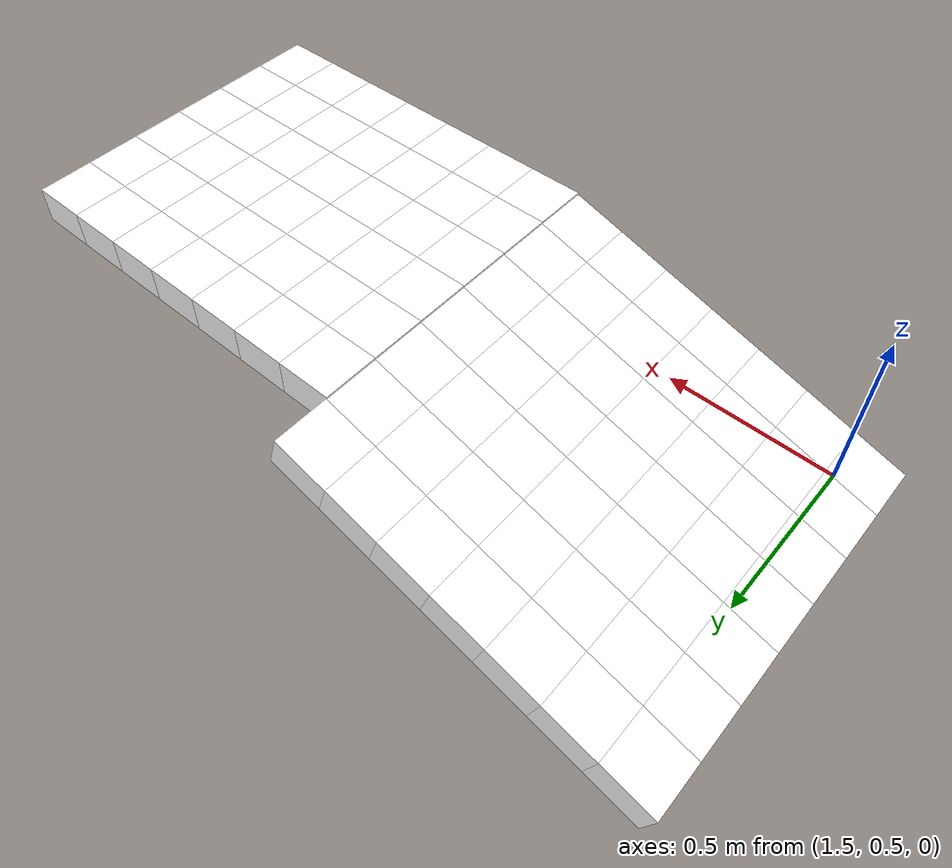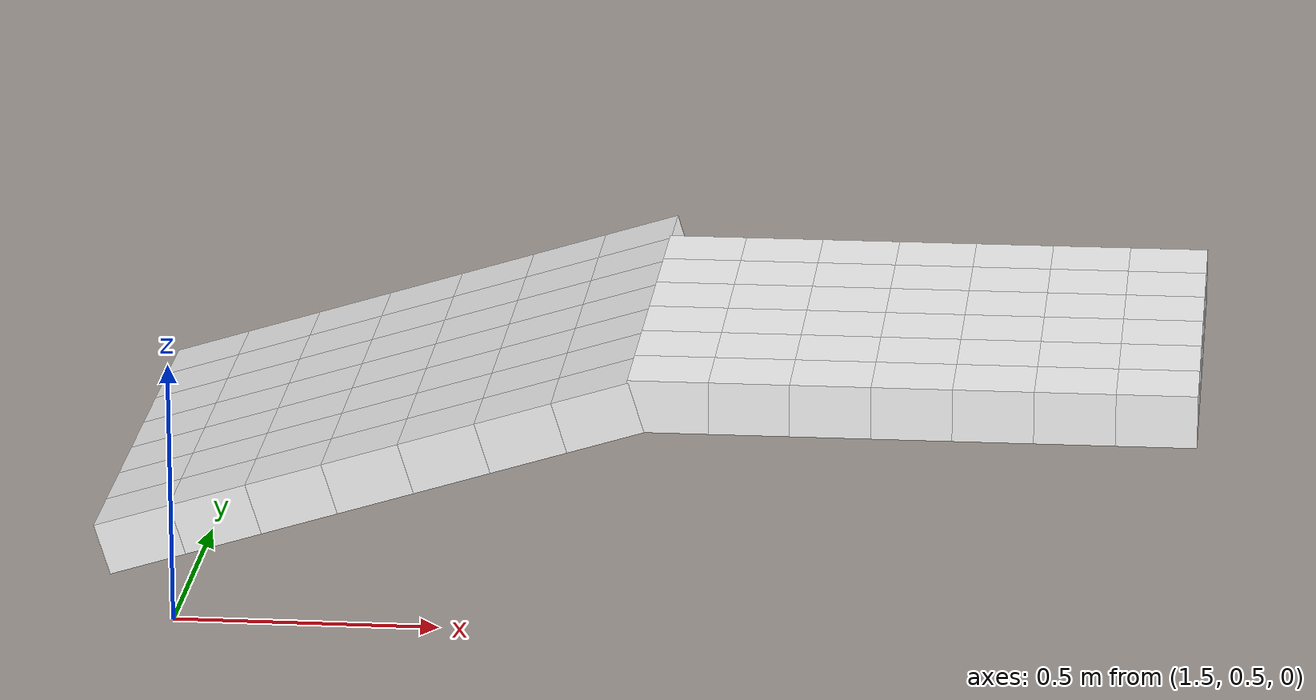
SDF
<sdf version="1.7">
 <world name="default">
  <include><uri>model://sun</uri></include>
  <model name="static_environment">
   <static>true</static>
   <link name="region_403">
    <pose>1.4350740071713122 0.6 0.1466852591640488 0.0 -0.3 0.0</pose>
    <collision name="region_403_collision">
     <geometry><box><size>0.15 0.15 0.1</size></box></geometry>
     <surface><friction><ode><mu>1.0</mu><mu2>1.0</mu2></ode></friction></surface>
    </collision>
    <visual name="region_403_visual">
     <geometry><box><size>0.15 0.15 0.1</size></box></geometry>
     <material><ambient>1.0 1.0 1.0 1.0</ambient><diffuse>1.0 1.0 1.0 1.0</diffuse></material>
    </visual>
   </link>
   <link name="region_404">
    <pose>1.5783744805401532 0.6 0.1910132901632498 0.0 -0.3 0.0</pose>
    <collision name="region_404_collision">
     <geometry><box><size>0.15 0.15 0.1</size></box></geometry>
     <surface><friction><ode><mu>1.0</mu><mu2>1.0</mu2></ode></friction></surface>
    </collision>
    <visual name="region_404_visual">
     <geometry><box><size>0.15 0.15 0.1</size></box></geometry>
     <material><ambient>1.0 1.0 1.0 1.0</ambient><diffuse>1.0 1.0 1.0 1.0</diffuse></material>
    </visual>
   </link>
   <link name="region_405">
    <pose>1.7216749539089942 0.6 0.2353413211624507 0.0 -0.3 0.0</pose>
    <collision name="region_405_collision">
     <geometry><box><size>0.15 0.15 0.1</size></box></geometry>
     <surface><friction><ode><mu>1.0</mu><mu2>1.0</mu2></ode></friction></surface>
    </collision>
    <visual name="region_405_visual">
     <geometry><box><size>0.15 0.15 0.1</size></box></geometry>
     <material><ambient>1.0 1.0 1.0 1.0</ambient><diffuse>1.0 1.0 1.0 1.0</diffuse></material>
    </visual>
   </link>
   <link name="region_406">
    <pose>1.8649754272778347 0.6 0.2796693521616516 0.0 -0.3 0.0</pose>
    <collision name="region_406_collision">
     <geometry><box><size>0.15 0.15 0.1</size></box></geometry>
     <surface><friction><ode><mu>1.0</mu><mu2>1.0</mu2></ode></friction></surface>
    </collision>
    <visual name="region_406_visual">
     <geometry><box><size>0.15 0.15 0.1</size></box></geometry>
     <material><ambient>1.0 1.0 1.0 1.0</ambient><diffuse>1.0 1.0 1.0 1.0</diffuse></material>
    </visual>
   </link>
   <link name="region_407">
    <pose>2.0082759006466757 0.6 0.3239973831608525 0.0 -0.3 0.0</pose>
    <collision name="region_407_collision">
     <geometry><box><size>0.15 0.15 0.1</size></box></geometry>
     <surface><friction><ode><mu>1.0</mu><mu2>1.0</mu2></ode></friction></surface>
    </collision>
    <visual name="region_407_visual">
     <geometry><box><size>0.15 0.15 0.1</size></box></geometry>
     <material><ambient>1.0 1.0 1.0 1.0</ambient><diffuse>1.0 1.0 1.0 1.0</diffuse></material>
    </visual>
   </link>
   <link name="region_408">
    <pose>2.151576374015516 0.6 0.36832541416005343 0.0 -0.3 0.0</pose>
    <collision name="region_408_collision">
     <geometry><box><size>0.15 0.15 0.1</size></box></geometry>
     <surface><friction><ode><mu>1.0</mu><mu2>1.0</mu2></ode></friction></surface>
    </collision>
    <visual name="region_408_visual">
     <geometry><box><size>0.15 0.15 0.1</size></box></geometry>
     <material><ambient>1.0 1.0 1.0 1.0</ambient><diffuse>1.0 1.0 1.0 1.0</diffuse></material>
    </visual>
   </link>
   <link name="region_409">
    <pose>2.2948768473843577 0.6 0.41265344515925434 0.0 -0.3 0.0</pose>
    <collision name="region_409_collision">
     <geometry><box><size>0.15 0.15 0.1</size></box></geometry>
     <surface><friction><ode><mu>1.0</mu><mu2>1.0</mu2></ode></friction></surface>
    </collision>
    <visual name="region_409_visual">
     <geometry><box><size>0.15 0.15 0.1</size></box></geometry>
     <material><ambient>1.0 1.0 1.0 1.0</ambient><diffuse>1.0 1.0 1.0 1.0</diffuse></material>
    </visual>
   </link>
   <link name="region_413">
    <pose>1.4350740071713122 0.75 0.1466852591640488 0.0 -0.3 0.0</pose>
    <collision name="region_413_collision">
     <geometry><box><size>0.15 0.15 0.1</size></box></geometry>
     <surface><friction><ode><mu>1.0</mu><mu2>1.0</mu2></ode></friction></surface>
    </collision>
    <visual name="region_413_visual">
     <geometry><box><size>0.15 0.15 0.1</size></box></geometry>
     <material><ambient>1.0 1.0 1.0 1.0</ambient><diffuse>1.0 1.0 1.0 1.0</diffuse></material>
    </visual>
   </link>
   <link name="region_414">
    <pose>1.5783744805401532 0.75 0.1910132901632498 0.0 -0.3 0.0</pose>
    <collision name="region_414_collision">
     <geometry><box><size>0.15 0.15 0.1</size></box></geometry>
     <surface><friction><ode><mu>1.0</mu><mu2>1.0</mu2></ode></friction></surface>
    </collision>
    <visual name="region_414_visual">
     <geometry><box><size>0.15 0.15 0.1</size></box></geometry>
     <material><ambient>1.0 1.0 1.0 1.0</ambient><diffuse>1.0 1.0 1.0 1.0</diffuse></material>
    </visual>
   </link>
   <link name="region_415">
    <pose>1.7216749539089942 0.75 0.2353413211624507 0.0 -0.3 0.0</pose>
    <collision name="region_415_collision">
     <geometry><box><size>0.15 0.15 0.1</size></box></geometry>
     <surface><friction><ode><mu>1.0</mu><mu2>1.0</mu2></ode></friction></surface>
    </collision>
    <visual name="region_415_visual">
     <geometry><box><size>0.15 0.15 0.1</size></box></geometry>
     <material><ambient>1.0 1.0 1.0 1.0</ambient><diffuse>1.0 1.0 1.0 1.0</diffuse></material>
    </visual>
   </link>
   <link name="region_416">
    <pose>1.8649754272778347 0.75 0.2796693521616516 0.0 -0.3 0.0</pose>
    <collision name="region_416_collision">
     <geometry><box><size>0.15 0.15 0.1</size></box></geometry>
     <surface><friction><ode><mu>1.0</mu><mu2>1.0</mu2></ode></friction></surface>
    </collision>
    <visual name="region_416_visual">
     <geometry><box><size>0.15 0.15 0.1</size></box></geometry>
     <material><ambient>1.0 1.0 1.0 1.0</ambient><diffuse>1.0 1.0 1.0 1.0</diffuse></material>
    </visual>
   </link>
   <link name="region_417">
    <pose>2.0082759006466757 0.75 0.3239973831608525 0.0 -0.3 0.0</pose>
    <collision name="region_417_collision">
     <geometry><box><size>0.15 0.15 0.1</size></box></geometry>
     <surface><friction><ode><mu>1.0</mu><mu2>1.0</mu2></ode></friction></surface>
    </collision>
    <visual name="region_417_visual">
     <geometry><box><size>0.15 0.15 0.1</size></box></geometry>
     <material><ambient>1.0 1.0 1.0 1.0</ambient><diffuse>1.0 1.0 1.0 1.0</diffuse></material>
    </visual>
   </link>
   <link name="region_418">
    <pose>2.151576374015516 0.75 0.36832541416005343 0.0 -0.3 0.0</pose>
    <collision name="region_418_collision">
     <geometry><box><size>0.15 0.15 0.1</size></box></geometry>
     <surface><friction><ode><mu>1.0</mu><mu2>1.0</mu2></ode></friction></surface>
    </collision>
    <visual name="region_418_visual">
     <geometry><box><size>0.15 0.15 0.1</size></box></geometry>
     <material><ambient>1.0 1.0 1.0 1.0</ambient><diffuse>1.0 1.0 1.0 1.0</diffuse></material>
    </visual>
   </link>
   <link name="region_419">
    <pose>2.2948768473843577 0.75 0.41265344515925434 0.0 -0.3 0.0</pose>
    <collision name="region_419_collision">
     <geometry><box><size>0.15 0.15 0.1</size></box></geometry>
     <surface><friction><ode><mu>1.0</mu><mu2>1.0</mu2></ode></friction></surface>
    </collision>
    <visual name="region_419_visual">
     <geometry><box><size>0.15 0.15 0.1</size></box></geometry>
     <material><ambient>1.0 1.0 1.0 1.0</ambient><diffuse>1.0 1.0 1.0 1.0</diffuse></material>
    </visual>
   </link>
   <link name="region_423">
    <pose>1.4350740071713122 0.8999999999999999 0.1466852591640488 0.0 -0.3 0.0</pose>
    <collision name="region_423_collision">
     <geometry><box><size>0.15 0.15 0.1</size></box></geometry>
     <surface><friction><ode><mu>1.0</mu><mu2>1.0</mu2></ode></friction></surface>
    </collision>
    <visual name="region_423_visual">
     <geometry><box><size>0.15 0.15 0.1</size></box></geometry>
     <material><ambient>1.0 1.0 1.0 1.0</ambient><diffuse>1.0 1.0 1.0 1.0</diffuse></material>
    </visual>
   </link>
   <link name="region_424">
    <pose>1.5783744805401532 0.8999999999999999 0.1910132901632498 0.0 -0.3 0.0</pose>
    <collision name="region_424_collision">
     <geometry><box><size>0.15 0.15 0.1</size></box></geometry>
     <surface><friction><ode><mu>1.0</mu><mu2>1.0</mu2></ode></friction></surface>
    </collision>
    <visual name="region_424_visual">
     <geometry><box><size>0.15 0.15 0.1</size></box></geometry>
     <material><ambient>1.0 1.0 1.0 1.0</ambient><diffuse>1.0 1.0 1.0 1.0</diffuse></material>
    </visual>
   </link>
   <link name="region_425">
    <pose>1.7216749539089942 0.8999999999999999 0.2353413211624507 0.0 -0.3 0.0</pose>
    <collision name="region_425_collision">
     <geometry><box><size>0.15 0.15 0.1</size></box></geometry>
     <surface><friction><ode><mu>1.0</mu><mu2>1.0</mu2></ode></friction></surface>
    </collision>
    <visual name="region_425_visual">
     <geometry><box><size>0.15 0.15 0.1</size></box></geometry>
     <material><ambient>1.0 1.0 1.0 1.0</ambient><diffuse>1.0 1.0 1.0 1.0</diffuse></material>
    </visual>
   </link>
   <link name="region_426">
    <pose>1.8649754272778347 0.8999999999999999 0.2796693521616516 0.0 -0.3 0.0</pose>
    <collision name="region_426_collision">
     <geometry><box><size>0.15 0.15 0.1</size></box></geometry>
     <surface><friction><ode><mu>1.0</mu><mu2>1.0</mu2></ode></friction></surface>
    </collision>
    <visual name="region_426_visual">
     <geometry><box><size>0.15 0.15 0.1</size></box></geometry>
     <material><ambient>1.0 1.0 1.0 1.0</ambient><diffuse>1.0 1.0 1.0 1.0</diffuse></material>
    </visual>
   </link>
   <link name="region_427">
    <pose>2.0082759006466757 0.8999999999999999 0.3239973831608525 0.0 -0.3 0.0</pose>
    <collision name="region_427_collision">
     <geometry><box><size>0.15 0.15 0.1</size></box></geometry>
     <surface><friction><ode><mu>1.0</mu><mu2>1.0</mu2></ode></friction></surface>
    </collision>
    <visual name="region_427_visual">
     <geometry><box><size>0.15 0.15 0.1</size></box></geometry>
     <material><ambient>1.0 1.0 1.0 1.0</ambient><diffuse>1.0 1.0 1.0 1.0</diffuse></material>
    </visual>
   </link>
   <link name="region_428">
    <pose>2.151576374015516 0.8999999999999999 0.36832541416005343 0.0 -0.3 0.0</pose>
    <collision name="region_428_collision">
     <geometry><box><size>0.15 0.15 0.1</size></box></geometry>
     <surface><friction><ode><mu>1.0</mu><mu2>1.0</mu2></ode></friction></surface>
    </collision>
    <visual name="region_428_visual">
     <geometry><box><size>0.15 0.15 0.1</size></box></geometry>
     <material><ambient>1.0 1.0 1.0 1.0</ambient><diffuse>1.0 1.0 1.0 1.0</diffuse></material>
    </visual>
   </link>
   <link name="region_429">
    <pose>2.2948768473843577 0.8999999999999999 0.41265344515925434 0.0 -0.3 0.0</pose>
    <collision name="region_429_collision">
     <geometry><box><size>0.15 0.15 0.1</size></box></geometry>
     <surface><friction><ode><mu>1.0</mu><mu2>1.0</mu2></ode></friction></surface>
    </collision>
    <visual name="region_429_visual">
     <geometry><box><size>0.15 0.15 0.1</size></box></geometry>
     <material><ambient>1.0 1.0 1.0 1.0</ambient><diffuse>1.0 1.0 1.0 1.0</diffuse></material>
    </visual>
   </link>
   <link name="region_433">
    <pose>1.4350740071713122 1.0499999999999998 0.1466852591640488 0.0 -0.3 0.0</pose>
    <collision name="region_433_collision">
     <geometry><box><size>0.15 0.15 0.1</size></box></geometry>
     <surface><friction><ode><mu>1.0</mu><mu2>1.0</mu2></ode></friction></surface>
    </collision>
    <visual name="region_433_visual">
     <geometry><box><size>0.15 0.15 0.1</size></box></geometry>
     <material><ambient>1.0 1.0 1.0 1.0</ambient><diffuse>1.0 1.0 1.0 1.0</diffuse></material>
    </visual>
   </link>
   <link name="region_434">
    <pose>1.5783744805401532 1.0499999999999998 0.1910132901632498 0.0 -0.3 0.0</pose>
    <collision name="region_434_collision">
     <geometry><box><size>0.15 0.15 0.1</size></box></geometry>
     <surface><friction><ode><mu>1.0</mu><mu2>1.0</mu2></ode></friction></surface>
    </collision>
    <visual name="region_434_visual">
     <geometry><box><size>0.15 0.15 0.1</size></box></geometry>
     <material><ambient>1.0 1.0 1.0 1.0</ambient><diffuse>1.0 1.0 1.0 1.0</diffuse></material>
    </visual>
   </link>
   <link name="region_435">
    <pose>1.7216749539089942 1.0499999999999998 0.2353413211624507 0.0 -0.3 0.0</pose>
    <collision name="region_435_collision">
     <geometry><box><size>0.15 0.15 0.1</size></box></geometry>
     <surface><friction><ode><mu>1.0</mu><mu2>1.0</mu2></ode></friction></surface>
    </collision>
    <visual name="region_435_visual">
     <geometry><box><size>0.15 0.15 0.1</size></box></geometry>
     <material><ambient>1.0 1.0 1.0 1.0</ambient><diffuse>1.0 1.0 1.0 1.0</diffuse></material>
    </visual>
   </link>
   <link name="region_436">
    <pose>1.8649754272778347 1.0499999999999998 0.2796693521616516 0.0 -0.3 0.0</pose>
    <collision name="region_436_collision">
     <geometry><box><size>0.15 0.15 0.1</size></box></geometry>
     <surface><friction><ode><mu>1.0</mu><mu2>1.0</mu2></ode></friction></surface>
    </collision>
    <visual name="region_436_visual">
     <geometry><box><size>0.15 0.15 0.1</size></box></geometry>
     <material><ambient>1.0 1.0 1.0 1.0</ambient><diffuse>1.0 1.0 1.0 1.0</diffuse></material>
    </visual>
   </link>
   <link name="region_437">
    <pose>2.0082759006466757 1.0499999999999998 0.3239973831608525 0.0 -0.3 0.0</pose>
    <collision name="region_437_collision">
     <geometry><box><size>0.15 0.15 0.1</size></box></geometry>
     <surface><friction><ode><mu>1.0</mu><mu2>1.0</mu2></ode></friction></surface>
    </collision>
    <visual name="region_437_visual">
     <geometry><box><size>0.15 0.15 0.1</size></box></geometry>
     <material><ambient>1.0 1.0 1.0 1.0</ambient><diffuse>1.0 1.0 1.0 1.0</diffuse></material>
    </visual>
   </link>
   <link name="region_438">
    <pose>2.151576374015516 1.0499999999999998 0.36832541416005343 0.0 -0.3 0.0</pose>
    <collision name="region_438_collision">
     <geometry><box><size>0.15 0.15 0.1</size></box></geometry>
     <surface><friction><ode><mu>1.0</mu><mu2>1.0</mu2></ode></friction></surface>
    </collision>
    <visual name="region_438_visual">
     <geometry><box><size>0.15 0.15 0.1</size></box></geometry>
     <material><ambient>1.0 1.0 1.0 1.0</ambient><diffuse>1.0 1.0 1.0 1.0</diffuse></material>
    </visual>
   </link>
   <link name="region_439">
    <pose>2.2948768473843577 1.0499999999999998 0.41265344515925434 0.0 -0.3 0.0</pose>
    <collision name="region_439_collision">
     <geometry><box><size>0.15 0.15 0.1</size></box></geometry>
     <surface><friction><ode><mu>1.0</mu><mu2>1.0</mu2></ode></friction></surface>
    </collision>
    <visual name="region_439_visual">
     <geometry><box><size>0.15 0.15 0.1</size></box></geometry>
     <material><ambient>1.0 1.0 1.0 1.0</ambient><diffuse>1.0 1.0 1.0 1.0</diffuse></material>
    </visual>
   </link>
   <link name="region_443">
    <pose>1.4350740071713122 1.2 0.1466852591640488 0.0 -0.3 0.0</pose>
    <collision name="region_443_collision">
     <geometry><box><size>0.15 0.15 0.1</size></box></geometry>
     <surface><friction><ode><mu>1.0</mu><mu2>1.0</mu2></ode></friction></surface>
    </collision>
    <visual name="region_443_visual">
     <geometry><box><size>0.15 0.15 0.1</size></box></geometry>
     <material><ambient>1.0 1.0 1.0 1.0</ambient><diffuse>1.0 1.0 1.0 1.0</diffuse></material>
    </visual>
   </link>
   <link name="region_444">
    <pose>1.5783744805401532 1.2 0.1910132901632498 0.0 -0.3 0.0</pose>
    <collision name="region_444_collision">
     <geometry><box><size>0.15 0.15 0.1</size></box></geometry>
     <surface><friction><ode><mu>1.0</mu><mu2>1.0</mu2></ode></friction></surface>
    </collision>
    <visual name="region_444_visual">
     <geometry><box><size>0.15 0.15 0.1</size></box></geometry>
     <material><ambient>1.0 1.0 1.0 1.0</ambient><diffuse>1.0 1.0 1.0 1.0</diffuse></material>
    </visual>
   </link>
   <link name="region_445">
    <pose>1.7216749539089942 1.2 0.2353413211624507 0.0 -0.3 0.0</pose>
    <collision name="region_445_collision">
     <geometry><box><size>0.15 0.15 0.1</size></box></geometry>
     <surface><friction><ode><mu>1.0</mu><mu2>1.0</mu2></ode></friction></surface>
    </collision>
    <visual name="region_445_visual">
     <geometry><box><size>0.15 0.15 0.1</size></box></geometry>
     <material><ambient>1.0 1.0 1.0 1.0</ambient><diffuse>1.0 1.0 1.0 1.0</diffuse></material>
    </visual>
   </link>
   <link name="region_446">
    <pose>1.8649754272778347 1.2 0.2796693521616516 0.0 -0.3 0.0</pose>
    <collision name="region_446_collision">
     <geometry><box><size>0.15 0.15 0.1</size></box></geometry>
     <surface><friction><ode><mu>1.0</mu><mu2>1.0</mu2></ode></friction></surface>
    </collision>
    <visual name="region_446_visual">
     <geometry><box><size>0.15 0.15 0.1</size></box></geometry>
     <material><ambient>1.0 1.0 1.0 1.0</ambient><diffuse>1.0 1.0 1.0 1.0</diffuse></material>
    </visual>
   </link>
   <link name="region_447">
    <pose>2.0082759006466757 1.2 0.3239973831608525 0.0 -0.3 0.0</pose>
    <collision name="region_447_collision">
     <geometry><box><size>0.15 0.15 0.1</size></box></geometry>
     <surface><friction><ode><mu>1.0</mu><mu2>1.0</mu2></ode></friction></surface>
    </collision>
    <visual name="region_447_visual">
     <geometry><box><size>0.15 0.15 0.1</size></box></geometry>
     <material><ambient>1.0 1.0 1.0 1.0</ambient><diffuse>1.0 1.0 1.0 1.0</diffuse></material>
    </visual>
   </link>
   <link name="region_448">
    <pose>2.151576374015516 1.2 0.36832541416005343 0.0 -0.3 0.0</pose>
    <collision name="region_448_collision">
     <geometry><box><size>0.15 0.15 0.1</size></box></geometry>
     <surface><friction><ode><mu>1.0</mu><mu2>1.0</mu2></ode></friction></surface>
    </collision>
    <visual name="region_448_visual">
     <geometry><box><size>0.15 0.15 0.1</size></box></geometry>
     <material><ambient>1.0 1.0 1.0 1.0</ambient><diffuse>1.0 1.0 1.0 1.0</diffuse></material>
    </visual>
   </link>
   <link name="region_449">
    <pose>2.2948768473843577 1.2 0.41265344515925434 0.0 -0.3 0.0</pose>
    <collision name="region_449_collision">
     <geometry><box><size>0.15 0.15 0.1</size></box></geometry>
     <surface><friction><ode><mu>1.0</mu><mu2>1.0</mu2></ode></friction></surface>
    </collision>
    <visual name="region_449_visual">
     <geometry><box><size>0.15 0.15 0.1</size></box></geometry>
     <material><ambient>1.0 1.0 1.0 1.0</ambient><diffuse>1.0 1.0 1.0 1.0</diffuse></material>
    </visual>
   </link>
   <link name="region_453">
    <pose>1.4350740071713122 1.35 0.1466852591640488 0.0 -0.3 0.0</pose>
    <collision name="region_453_collision">
     <geometry><box><size>0.15 0.15 0.1</size></box></geometry>
     <surface><friction><ode><mu>1.0</mu><mu2>1.0</mu2></ode></friction></surface>
    </collision>
    <visual name="region_453_visual">
     <geometry><box><size>0.15 0.15 0.1</size></box></geometry>
     <material><ambient>1.0 1.0 1.0 1.0</ambient><diffuse>1.0 1.0 1.0 1.0</diffuse></material>
    </visual>
   </link>
   <link name="region_454">
    <pose>1.5783744805401532 1.35 0.1910132901632498 0.0 -0.3 0.0</pose>
    <collision name="region_454_collision">
     <geometry><box><size>0.15 0.15 0.1</size></box></geometry>
     <surface><friction><ode><mu>1.0</mu><mu2>1.0</mu2></ode></friction></surface>
    </collision>
    <visual name="region_454_visual">
     <geometry><box><size>0.15 0.15 0.1</size></box></geometry>
     <material><ambient>1.0 1.0 1.0 1.0</ambient><diffuse>1.0 1.0 1.0 1.0</diffuse></material>
    </visual>
   </link>
   <link name="region_455">
    <pose>1.7216749539089942 1.35 0.2353413211624507 0.0 -0.3 0.0</pose>
    <collision name="region_455_collision">
     <geometry><box><size>0.15 0.15 0.1</size></box></geometry>
     <surface><friction><ode><mu>1.0</mu><mu2>1.0</mu2></ode></friction></surface>
    </collision>
    <visual name="region_455_visual">
     <geometry><box><size>0.15 0.15 0.1</size></box></geometry>
     <material><ambient>1.0 1.0 1.0 1.0</ambient><diffuse>1.0 1.0 1.0 1.0</diffuse></material>
    </visual>
   </link>
   <link name="region_456">
    <pose>1.8649754272778347 1.35 0.2796693521616516 0.0 -0.3 0.0</pose>
    <collision name="region_456_collision">
     <geometry><box><size>0.15 0.15 0.1</size></box></geometry>
     <surface><friction><ode><mu>1.0</mu><mu2>1.0</mu2></ode></friction></surface>
    </collision>
    <visual name="region_456_visual">
     <geometry><box><size>0.15 0.15 0.1</size></box></geometry>
     <material><ambient>1.0 1.0 1.0 1.0</ambient><diffuse>1.0 1.0 1.0 1.0</diffuse></material>
    </visual>
   </link>
   <link name="region_457">
    <pose>2.0082759006466757 1.35 0.3239973831608525 0.0 -0.3 0.0</pose>
    <collision name="region_457_collision">
     <geometry><box><size>0.15 0.15 0.1</size></box></geometry>
     <surface><friction><ode><mu>1.0</mu><mu2>1.0</mu2></ode></friction></surface>
    </collision>
    <visual name="region_457_visual">
     <geometry><box><size>0.15 0.15 0.1</size></box></geometry>
     <material><ambient>1.0 1.0 1.0 1.0</ambient><diffuse>1.0 1.0 1.0 1.0</diffuse></material>
    </visual>
   </link>
   <link name="region_458">
    <pose>2.151576374015516 1.35 0.36832541416005343 0.0 -0.3 0.0</pose>
    <collision name="region_458_collision">
     <geometry><box><size>0.15 0.15 0.1</size></box></geometry>
     <surface><friction><ode><mu>1.0</mu><mu2>1.0</mu2></ode></friction></surface>
    </collision>
    <visual name="region_458_visual">
     <geometry><box><size>0.15 0.15 0.1</size></box></geometry>
     <material><ambient>1.0 1.0 1.0 1.0</ambient><diffuse>1.0 1.0 1.0 1.0</diffuse></material>
    </visual>
   </link>
   <link name="region_459">
    <pose>2.2948768473843577 1.35 0.41265344515925434 0.0 -0.3 0.0</pose>
    <collision name="region_459_collision">
     <geometry><box><size>0.15 0.15 0.1</size></box></geometry>
     <surface><friction><ode><mu>1.0</mu><mu2>1.0</mu2></ode></friction></surface>
    </collision>
    <visual name="region_459_visual">
     <geometry><box><size>0.15 0.15 0.1</size></box></geometry>
     <material><ambient>1.0 1.0 1.0 1.0</ambient><diffuse>1.0 1.0 1.0 1.0</diffuse></material>
    </visual>
   </link>
   <link name="region_463">
    <pose>1.4350740071713122 1.5 0.1466852591640488 0.0 -0.3 0.0</pose>
    <collision name="region_463_collision">
     <geometry><box><size>0.15 0.15 0.1</size></box></geometry>
     <surface><friction><ode><mu>1.0</mu><mu2>1.0</mu2></ode></friction></surface>
    </collision>
    <visual name="region_463_visual">
     <geometry><box><size>0.15 0.15 0.1</size></box></geometry>
     <material><ambient>1.0 1.0 1.0 1.0</ambient><diffuse>1.0 1.0 1.0 1.0</diffuse></material>
    </visual>
   </link>
   <link name="region_464">
    <pose>1.5783744805401532 1.5 0.1910132901632498 0.0 -0.3 0.0</pose>
    <collision name="region_464_collision">
     <geometry><box><size>0.15 0.15 0.1</size></box></geometry>
     <surface><friction><ode><mu>1.0</mu><mu2>1.0</mu2></ode></friction></surface>
    </collision>
    <visual name="region_464_visual">
     <geometry><box><size>0.15 0.15 0.1</size></box></geometry>
     <material><ambient>1.0 1.0 1.0 1.0</ambient><diffuse>1.0 1.0 1.0 1.0</diffuse></material>
    </visual>
   </link>
   <link name="region_465">
    <pose>1.7216749539089942 1.5 0.2353413211624507 0.0 -0.3 0.0</pose>
    <collision name="region_465_collision">
     <geometry><box><size>0.15 0.15 0.1</size></box></geometry>
     <surface><friction><ode><mu>1.0</mu><mu2>1.0</mu2></ode></friction></surface>
    </collision>
    <visual name="region_465_visual">
     <geometry><box><size>0.15 0.15 0.1</size></box></geometry>
     <material><ambient>1.0 1.0 1.0 1.0</ambient><diffuse>1.0 1.0 1.0 1.0</diffuse></material>
    </visual>
   </link>
   <link name="region_466">
    <pose>1.8649754272778347 1.5 0.2796693521616516 0.0 -0.3 0.0</pose>
    <collision name="region_466_collision">
     <geometry><box><size>0.15 0.15 0.1</size></box></geometry>
     <surface><friction><ode><mu>1.0</mu><mu2>1.0</mu2></ode></friction></surface>
    </collision>
    <visual name="region_466_visual">
     <geometry><box><size>0.15 0.15 0.1</size></box></geometry>
     <material><ambient>1.0 1.0 1.0 1.0</ambient><diffuse>1.0 1.0 1.0 1.0</diffuse></material>
    </visual>
   </link>
   <link name="region_467">
    <pose>2.0082759006466757 1.5 0.3239973831608525 0.0 -0.3 0.0</pose>
    <collision name="region_467_collision">
     <geometry><box><size>0.15 0.15 0.1</size></box></geometry>
     <surface><friction><ode><mu>1.0</mu><mu2>1.0</mu2></ode></friction></surface>
    </collision>
    <visual name="region_467_visual">
     <geometry><box><size>0.15 0.15 0.1</size></box></geometry>
     <material><ambient>1.0 1.0 1.0 1.0</ambient><diffuse>1.0 1.0 1.0 1.0</diffuse></material>
    </visual>
   </link>
   <link name="region_468">
    <pose>2.151576374015516 1.5 0.36832541416005343 0.0 -0.3 0.0</pose>
    <collision name="region_468_collision">
     <geometry><box><size>0.15 0.15 0.1</size></box></geometry>
     <surface><friction><ode><mu>1.0</mu><mu2>1.0</mu2></ode></friction></surface>
    </collision>
    <visual name="region_468_visual">
     <geometry><box><size>0.15 0.15 0.1</size></box></geometry>
     <material><ambient>1.0 1.0 1.0 1.0</ambient><diffuse>1.0 1.0 1.0 1.0</diffuse></material>
    </visual>
   </link>
   <link name="region_469">
    <pose>2.2948768473843577 1.5 0.41265344515925434 0.0 -0.3 0.0</pose>
    <collision name="region_469_collision">
     <geometry><box><size>0.15 0.15 0.1</size></box></geometry>
     <surface><friction><ode><mu>1.0</mu><mu2>1.0</mu2></ode></friction></surface>
    </collision>
    <visual name="region_469_visual">
     <geometry><box><size>0.15 0.15 0.1</size></box></geometry>
     <material><ambient>1.0 1.0 1.0 1.0</ambient><diffuse>1.0 1.0 1.0 1.0</diffuse></material>
    </visual>
   </link>
   <link name="region_600">
    <pose>2.425 0.6 0.4375 0.0 0.0 0.0</pose>
    <collision name="region_600_collision">
     <geometry><box><size>0.15 0.15 0.1</size></box></geometry>
     <surface><friction><ode><mu>1.0</mu><mu2>1.0</mu2></ode></friction></surface>
    </collision>
    <visual name="region_600_visual">
     <geometry><box><size>0.15 0.15 0.1</size></box></geometry>
     <material><ambient>1.0 1.0 1.0 1.0</ambient><diffuse>1.0 1.0 1.0 1.0</diffuse></material>
    </visual>
   </link>
   <link name="region_601">
    <pose>2.575 0.6 0.4375 0.0 0.0 0.0</pose>
    <collision name="region_601_collision">
     <geometry><box><size>0.15 0.15 0.1</size></box></geometry>
     <surface><friction><ode><mu>1.0</mu><mu2>1.0</mu2></ode></friction></surface>
    </collision>
    <visual name="region_601_visual">
     <geometry><box><size>0.15 0.15 0.1</size></box></geometry>
     <material><ambient>1.0 1.0 1.0 1.0</ambient><diffuse>1.0 1.0 1.0 1.0</diffuse></material>
    </visual>
   </link>
   <link name="region_602">
    <pose>2.7250000000000005 0.6 0.4375 0.0 0.0 0.0</pose>
    <collision name="region_602_collision">
     <geometry><box><size>0.15 0.15 0.1</size></box></geometry>
     <surface><friction><ode><mu>1.0</mu><mu2>1.0</mu2></ode></friction></surface>
    </collision>
    <visual name="region_602_visual">
     <geometry><box><size>0.15 0.15 0.1</size></box></geometry>
     <material><ambient>1.0 1.0 1.0 1.0</ambient><diffuse>1.0 1.0 1.0 1.0</diffuse></material>
    </visual>
   </link>
   <link name="region_603">
    <pose>2.875000000000001 0.6 0.4375 0.0 0.0 0.0</pose>
    <collision name="region_603_collision">
     <geometry><box><size>0.15 0.15 0.1</size></box></geometry>
     <surface><friction><ode><mu>1.0</mu><mu2>1.0</mu2></ode></friction></surface>
    </collision>
    <visual name="region_603_visual">
     <geometry><box><size>0.15 0.15 0.1</size></box></geometry>
     <material><ambient>1.0 1.0 1.0 1.0</ambient><diffuse>1.0 1.0 1.0 1.0</diffuse></material>
    </visual>
   </link>
   <link name="region_604">
    <pose>3.0250000000000012 0.6 0.4375 0.0 0.0 0.0</pose>
    <collision name="region_604_collision">
     <geometry><box><size>0.15 0.15 0.1</size></box></geometry>
     <surface><friction><ode><mu>1.0</mu><mu2>1.0</mu2></ode></friction></surface>
    </collision>
    <visual name="region_604_visual">
     <geometry><box><size>0.15 0.15 0.1</size></box></geometry>
     <material><ambient>1.0 1.0 1.0 1.0</ambient><diffuse>1.0 1.0 1.0 1.0</diffuse></material>
    </visual>
   </link>
   <link name="region_605">
    <pose>3.1750000000000016 0.6 0.4375 0.0 0.0 0.0</pose>
    <collision name="region_605_collision">
     <geometry><box><size>0.15 0.15 0.1</size></box></geometry>
     <surface><friction><ode><mu>1.0</mu><mu2>1.0</mu2></ode></friction></surface>
    </collision>
    <visual name="region_605_visual">
     <geometry><box><size>0.15 0.15 0.1</size></box></geometry>
     <material><ambient>1.0 1.0 1.0 1.0</ambient><diffuse>1.0 1.0 1.0 1.0</diffuse></material>
    </visual>
   </link>
   <link name="region_606">
    <pose>3.325000000000002 0.6 0.4375 0.0 0.0 0.0</pose>
    <collision name="region_606_collision">
     <geometry><box><size>0.15 0.15 0.1</size></box></geometry>
     <surface><friction><ode><mu>1.0</mu><mu2>1.0</mu2></ode></friction></surface>
    </collision>
    <visual name="region_606_visual">
     <geometry><box><size>0.15 0.15 0.1</size></box></geometry>
     <material><ambient>1.0 1.0 1.0 1.0</ambient><diffuse>1.0 1.0 1.0 1.0</diffuse></material>
    </visual>
   </link>
   <link name="region_620">
    <pose>2.425 0.75 0.4375 0.0 0.0 0.0</pose>
    <collision name="region_620_collision">
     <geometry><box><size>0.15 0.15 0.1</size></box></geometry>
     <surface><friction><ode><mu>1.0</mu><mu2>1.0</mu2></ode></friction></surface>
    </collision>
    <visual name="region_620_visual">
     <geometry><box><size>0.15 0.15 0.1</size></box></geometry>
     <material><ambient>1.0 1.0 1.0 1.0</ambient><diffuse>1.0 1.0 1.0 1.0</diffuse></material>
    </visual>
   </link>
   <link name="region_621">
    <pose>2.575 0.75 0.4375 0.0 0.0 0.0</pose>
    <collision name="region_621_collision">
     <geometry><box><size>0.15 0.15 0.1</size></box></geometry>
     <surface><friction><ode><mu>1.0</mu><mu2>1.0</mu2></ode></friction></surface>
    </collision>
    <visual name="region_621_visual">
     <geometry><box><size>0.15 0.15 0.1</size></box></geometry>
     <material><ambient>1.0 1.0 1.0 1.0</ambient><diffuse>1.0 1.0 1.0 1.0</diffuse></material>
    </visual>
   </link>
   <link name="region_622">
    <pose>2.7250000000000005 0.75 0.4375 0.0 0.0 0.0</pose>
    <collision name="region_622_collision">
     <geometry><box><size>0.15 0.15 0.1</size></box></geometry>
     <surface><friction><ode><mu>1.0</mu><mu2>1.0</mu2></ode></friction></surface>
    </collision>
    <visual name="region_622_visual">
     <geometry><box><size>0.15 0.15 0.1</size></box></geometry>
     <material><ambient>1.0 1.0 1.0 1.0</ambient><diffuse>1.0 1.0 1.0 1.0</diffuse></material>
    </visual>
   </link>
   <link name="region_623">
    <pose>2.875000000000001 0.75 0.4375 0.0 0.0 0.0</pose>
    <collision name="region_623_collision">
     <geometry><box><size>0.15 0.15 0.1</size></box></geometry>
     <surface><friction><ode><mu>1.0</mu><mu2>1.0</mu2></ode></friction></surface>
    </collision>
    <visual name="region_623_visual">
     <geometry><box><size>0.15 0.15 0.1</size></box></geometry>
     <material><ambient>1.0 1.0 1.0 1.0</ambient><diffuse>1.0 1.0 1.0 1.0</diffuse></material>
    </visual>
   </link>
   <link name="region_624">
    <pose>3.0250000000000012 0.75 0.4375 0.0 0.0 0.0</pose>
    <collision name="region_624_collision">
     <geometry><box><size>0.15 0.15 0.1</size></box></geometry>
     <surface><friction><ode><mu>1.0</mu><mu2>1.0</mu2></ode></friction></surface>
    </collision>
    <visual name="region_624_visual">
     <geometry><box><size>0.15 0.15 0.1</size></box></geometry>
     <material><ambient>1.0 1.0 1.0 1.0</ambient><diffuse>1.0 1.0 1.0 1.0</diffuse></material>
    </visual>
   </link>
   <link name="region_625">
    <pose>3.1750000000000016 0.75 0.4375 0.0 0.0 0.0</pose>
    <collision name="region_625_collision">
     <geometry><box><size>0.15 0.15 0.1</size></box></geometry>
     <surface><friction><ode><mu>1.0</mu><mu2>1.0</mu2></ode></friction></surface>
    </collision>
    <visual name="region_625_visual">
     <geometry><box><size>0.15 0.15 0.1</size></box></geometry>
     <material><ambient>1.0 1.0 1.0 1.0</ambient><diffuse>1.0 1.0 1.0 1.0</diffuse></material>
    </visual>
   </link>
   <link name="region_626">
    <pose>3.325000000000002 0.75 0.4375 0.0 0.0 0.0</pose>
    <collision name="region_626_collision">
     <geometry><box><size>0.15 0.15 0.1</size></box></geometry>
     <surface><friction><ode><mu>1.0</mu><mu2>1.0</mu2></ode></friction></surface>
    </collision>
    <visual name="region_626_visual">
     <geometry><box><size>0.15 0.15 0.1</size></box></geometry>
     <material><ambient>1.0 1.0 1.0 1.0</ambient><diffuse>1.0 1.0 1.0 1.0</diffuse></material>
    </visual>
   </link>
   <link name="region_640">
    <pose>2.425 0.8999999999999999 0.4375 0.0 0.0 0.0</pose>
    <collision name="region_640_collision">
     <geometry><box><size>0.15 0.15 0.1</size></box></geometry>
     <surface><friction><ode><mu>1.0</mu><mu2>1.0</mu2></ode></friction></surface>
    </collision>
    <visual name="region_640_visual">
     <geometry><box><size>0.15 0.15 0.1</size></box></geometry>
     <material><ambient>1.0 1.0 1.0 1.0</ambient><diffuse>1.0 1.0 1.0 1.0</diffuse></material>
    </visual>
   </link>
   <link name="region_641">
    <pose>2.575 0.8999999999999999 0.4375 0.0 0.0 0.0</pose>
    <collision name="region_641_collision">
     <geometry><box><size>0.15 0.15 0.1</size></box></geometry>
     <surface><friction><ode><mu>1.0</mu><mu2>1.0</mu2></ode></friction></surface>
    </collision>
    <visual name="region_641_visual">
     <geometry><box><size>0.15 0.15 0.1</size></box></geometry>
     <material><ambient>1.0 1.0 1.0 1.0</ambient><diffuse>1.0 1.0 1.0 1.0</diffuse></material>
    </visual>
   </link>
   <link name="region_642">
    <pose>2.7250000000000005 0.8999999999999999 0.4375 0.0 0.0 0.0</pose>
    <collision name="region_642_collision">
     <geometry><box><size>0.15 0.15 0.1</size></box></geometry>
     <surface><friction><ode><mu>1.0</mu><mu2>1.0</mu2></ode></friction></surface>
    </collision>
    <visual name="region_642_visual">
     <geometry><box><size>0.15 0.15 0.1</size></box></geometry>
     <material><ambient>1.0 1.0 1.0 1.0</ambient><diffuse>1.0 1.0 1.0 1.0</diffuse></material>
    </visual>
   </link>
   <link name="region_643">
    <pose>2.875000000000001 0.8999999999999999 0.4375 0.0 0.0 0.0</pose>
    <collision name="region_643_collision">
     <geometry><box><size>0.15 0.15 0.1</size></box></geometry>
     <surface><friction><ode><mu>1.0</mu><mu2>1.0</mu2></ode></friction></surface>
    </collision>
    <visual name="region_643_visual">
     <geometry><box><size>0.15 0.15 0.1</size></box></geometry>
     <material><ambient>1.0 1.0 1.0 1.0</ambient><diffuse>1.0 1.0 1.0 1.0</diffuse></material>
    </visual>
   </link>
   <link name="region_644">
    <pose>3.0250000000000012 0.8999999999999999 0.4375 0.0 0.0 0.0</pose>
    <collision name="region_644_collision">
     <geometry><box><size>0.15 0.15 0.1</size></box></geometry>
     <surface><friction><ode><mu>1.0</mu><mu2>1.0</mu2></ode></friction></surface>
    </collision>
    <visual name="region_644_visual">
     <geometry><box><size>0.15 0.15 0.1</size></box></geometry>
     <material><ambient>1.0 1.0 1.0 1.0</ambient><diffuse>1.0 1.0 1.0 1.0</diffuse></material>
    </visual>
   </link>
   <link name="region_645">
    <pose>3.1750000000000016 0.8999999999999999 0.4375 0.0 0.0 0.0</pose>
    <collision name="region_645_collision">
     <geometry><box><size>0.15 0.15 0.1</size></box></geometry>
     <surface><friction><ode><mu>1.0</mu><mu2>1.0</mu2></ode></friction></surface>
    </collision>
    <visual name="region_645_visual">
     <geometry><box><size>0.15 0.15 0.1</size></box></geometry>
     <material><ambient>1.0 1.0 1.0 1.0</ambient><diffuse>1.0 1.0 1.0 1.0</diffuse></material>
    </visual>
   </link>
   <link name="region_646">
    <pose>3.325000000000002 0.8999999999999999 0.4375 0.0 0.0 0.0</pose>
    <collision name="region_646_collision">
     <geometry><box><size>0.15 0.15 0.1</size></box></geometry>
     <surface><friction><ode><mu>1.0</mu><mu2>1.0</mu2></ode></friction></surface>
    </collision>
    <visual name="region_646_visual">
     <geometry><box><size>0.15 0.15 0.1</size></box></geometry>
     <material><ambient>1.0 1.0 1.0 1.0</ambient><diffuse>1.0 1.0 1.0 1.0</diffuse></material>
    </visual>
   </link>
   <link name="region_660">
    <pose>2.425 1.0499999999999998 0.4375 0.0 0.0 0.0</pose>
    <collision name="region_660_collision">
     <geometry><box><size>0.15 0.15 0.1</size></box></geometry>
     <surface><friction><ode><mu>1.0</mu><mu2>1.0</mu2></ode></friction></surface>
    </collision>
    <visual name="region_660_visual">
     <geometry><box><size>0.15 0.15 0.1</size></box></geometry>
     <material><ambient>1.0 1.0 1.0 1.0</ambient><diffuse>1.0 1.0 1.0 1.0</diffuse></material>
    </visual>
   </link>
   <link name="region_661">
    <pose>2.575 1.0499999999999998 0.4375 0.0 0.0 0.0</pose>
    <collision name="region_661_collision">
     <geometry><box><size>0.15 0.15 0.1</size></box></geometry>
     <surface><friction><ode><mu>1.0</mu><mu2>1.0</mu2></ode></friction></surface>
    </collision>
    <visual name="region_661_visual">
     <geometry><box><size>0.15 0.15 0.1</size></box></geometry>
     <material><ambient>1.0 1.0 1.0 1.0</ambient><diffuse>1.0 1.0 1.0 1.0</diffuse></material>
    </visual>
   </link>
   <link name="region_662">
    <pose>2.7250000000000005 1.0499999999999998 0.4375 0.0 0.0 0.0</pose>
    <collision name="region_662_collision">
     <geometry><box><size>0.15 0.15 0.1</size></box></geometry>
     <surface><friction><ode><mu>1.0</mu><mu2>1.0</mu2></ode></friction></surface>
    </collision>
    <visual name="region_662_visual">
     <geometry><box><size>0.15 0.15 0.1</size></box></geometry>
     <material><ambient>1.0 1.0 1.0 1.0</ambient><diffuse>1.0 1.0 1.0 1.0</diffuse></material>
    </visual>
   </link>
   <link name="region_663">
    <pose>2.875000000000001 1.0499999999999998 0.4375 0.0 0.0 0.0</pose>
    <collision name="region_663_collision">
     <geometry><box><size>0.15 0.15 0.1</size></box></geometry>
     <surface><friction><ode><mu>1.0</mu><mu2>1.0</mu2></ode></friction></surface>
    </collision>
    <visual name="region_663_visual">
     <geometry><box><size>0.15 0.15 0.1</size></box></geometry>
     <material><ambient>1.0 1.0 1.0 1.0</ambient><diffuse>1.0 1.0 1.0 1.0</diffuse></material>
    </visual>
   </link>
   <link name="region_664">
    <pose>3.0250000000000012 1.0499999999999998 0.4375 0.0 0.0 0.0</pose>
    <collision name="region_664_collision">
     <geometry><box><size>0.15 0.15 0.1</size></box></geometry>
     <surface><friction><ode><mu>1.0</mu><mu2>1.0</mu2></ode></friction></surface>
    </collision>
    <visual name="region_664_visual">
     <geometry><box><size>0.15 0.15 0.1</size></box></geometry>
     <material><ambient>1.0 1.0 1.0 1.0</ambient><diffuse>1.0 1.0 1.0 1.0</diffuse></material>
    </visual>
   </link>
   <link name="region_665">
    <pose>3.1750000000000016 1.0499999999999998 0.4375 0.0 0.0 0.0</pose>
    <collision name="region_665_collision">
     <geometry><box><size>0.15 0.15 0.1</size></box></geometry>
     <surface><friction><ode><mu>1.0</mu><mu2>1.0</mu2></ode></friction></surface>
    </collision>
    <visual name="region_665_visual">
     <geometry><box><size>0.15 0.15 0.1</size></box></geometry>
     <material><ambient>1.0 1.0 1.0 1.0</ambient><diffuse>1.0 1.0 1.0 1.0</diffuse></material>
    </visual>
   </link>
   <link name="region_666">
    <pose>3.325000000000002 1.0499999999999998 0.4375 0.0 0.0 0.0</pose>
    <collision name="region_666_collision">
     <geometry><box><size>0.15 0.15 0.1</size></box></geometry>
     <surface><friction><ode><mu>1.0</mu><mu2>1.0</mu2></ode></friction></surface>
    </collision>
    <visual name="region_666_visual">
     <geometry><box><size>0.15 0.15 0.1</size></box></geometry>
     <material><ambient>1.0 1.0 1.0 1.0</ambient><diffuse>1.0 1.0 1.0 1.0</diffuse></material>
    </visual>
   </link>
   <link name="region_680">
    <pose>2.425 1.2 0.4375 0.0 0.0 0.0</pose>
    <collision name="region_680_collision">
     <geometry><box><size>0.15 0.15 0.1</size></box></geometry>
     <surface><friction><ode><mu>1.0</mu><mu2>1.0</mu2></ode></friction></surface>
    </collision>
    <visual name="region_680_visual">
     <geometry><box><size>0.15 0.15 0.1</size></box></geometry>
     <material><ambient>1.0 1.0 1.0 1.0</ambient><diffuse>1.0 1.0 1.0 1.0</diffuse></material>
    </visual>
   </link>
   <link name="region_681">
    <pose>2.575 1.2 0.4375 0.0 0.0 0.0</pose>
    <collision name="region_681_collision">
     <geometry><box><size>0.15 0.15 0.1</size></box></geometry>
     <surface><friction><ode><mu>1.0</mu><mu2>1.0</mu2></ode></friction></surface>
    </collision>
    <visual name="region_681_visual">
     <geometry><box><size>0.15 0.15 0.1</size></box></geometry>
     <material><ambient>1.0 1.0 1.0 1.0</ambient><diffuse>1.0 1.0 1.0 1.0</diffuse></material>
    </visual>
   </link>
   <link name="region_682">
    <pose>2.7250000000000005 1.2 0.4375 0.0 0.0 0.0</pose>
    <collision name="region_682_collision">
     <geometry><box><size>0.15 0.15 0.1</size></box></geometry>
     <surface><friction><ode><mu>1.0</mu><mu2>1.0</mu2></ode></friction></surface>
    </collision>
    <visual name="region_682_visual">
     <geometry><box><size>0.15 0.15 0.1</size></box></geometry>
     <material><ambient>1.0 1.0 1.0 1.0</ambient><diffuse>1.0 1.0 1.0 1.0</diffuse></material>
    </visual>
   </link>
   <link name="region_683">
    <pose>2.875000000000001 1.2 0.4375 0.0 0.0 0.0</pose>
    <collision name="region_683_collision">
     <geometry><box><size>0.15 0.15 0.1</size></box></geometry>
     <surface><friction><ode><mu>1.0</mu><mu2>1.0</mu2></ode></friction></surface>
    </collision>
    <visual name="region_683_visual">
     <geometry><box><size>0.15 0.15 0.1</size></box></geometry>
     <material><ambient>1.0 1.0 1.0 1.0</ambient><diffuse>1.0 1.0 1.0 1.0</diffuse></material>
    </visual>
   </link>
   <link name="region_684">
    <pose>3.0250000000000012 1.2 0.4375 0.0 0.0 0.0</pose>
    <collision name="region_684_collision">
     <geometry><box><size>0.15 0.15 0.1</size></box></geometry>
     <surface><friction><ode><mu>1.0</mu><mu2>1.0</mu2></ode></friction></surface>
    </collision>
    <visual name="region_684_visual">
     <geometry><box><size>0.15 0.15 0.1</size></box></geometry>
     <material><ambient>1.0 1.0 1.0 1.0</ambient><diffuse>1.0 1.0 1.0 1.0</diffuse></material>
    </visual>
   </link>
   <link name="region_685">
    <pose>3.1750000000000016 1.2 0.4375 0.0 0.0 0.0</pose>
    <collision name="region_685_collision">
     <geometry><box><size>0.15 0.15 0.1</size></box></geometry>
     <surface><friction><ode><mu>1.0</mu><mu2>1.0</mu2></ode></friction></surface>
    </collision>
    <visual name="region_685_visual">
     <geometry><box><size>0.15 0.15 0.1</size></box></geometry>
     <material><ambient>1.0 1.0 1.0 1.0</ambient><diffuse>1.0 1.0 1.0 1.0</diffuse></material>
    </visual>
   </link>
   <link name="region_686">
    <pose>3.325000000000002 1.2 0.4375 0.0 0.0 0.0</pose>
    <collision name="region_686_collision">
     <geometry><box><size>0.15 0.15 0.1</size></box></geometry>
     <surface><friction><ode><mu>1.0</mu><mu2>1.0</mu2></ode></friction></surface>
    </collision>
    <visual name="region_686_visual">
     <geometry><box><size>0.15 0.15 0.1</size></box></geometry>
     <material><ambient>1.0 1.0 1.0 1.0</ambient><diffuse>1.0 1.0 1.0 1.0</diffuse></material>
    </visual>
   </link>
   <link name="region_700">
    <pose>2.425 1.35 0.4375 0.0 0.0 0.0</pose>
    <collision name="region_700_collision">
     <geometry><box><size>0.15 0.15 0.1</size></box></geometry>
     <surface><friction><ode><mu>1.0</mu><mu2>1.0</mu2></ode></friction></surface>
    </collision>
    <visual name="region_700_visual">
     <geometry><box><size>0.15 0.15 0.1</size></box></geometry>
     <material><ambient>1.0 1.0 1.0 1.0</ambient><diffuse>1.0 1.0 1.0 1.0</diffuse></material>
    </visual>
   </link>
   <link name="region_701">
    <pose>2.575 1.35 0.4375 0.0 0.0 0.0</pose>
    <collision name="region_701_collision">
     <geometry><box><size>0.15 0.15 0.1</size></box></geometry>
     <surface><friction><ode><mu>1.0</mu><mu2>1.0</mu2></ode></friction></surface>
    </collision>
    <visual name="region_701_visual">
     <geometry><box><size>0.15 0.15 0.1</size></box></geometry>
     <material><ambient>1.0 1.0 1.0 1.0</ambient><diffuse>1.0 1.0 1.0 1.0</diffuse></material>
    </visual>
   </link>
   <link name="region_702">
    <pose>2.7250000000000005 1.35 0.4375 0.0 0.0 0.0</pose>
    <collision name="region_702_collision">
     <geometry><box><size>0.15 0.15 0.1</size></box></geometry>
     <surface><friction><ode><mu>1.0</mu><mu2>1.0</mu2></ode></friction></surface>
    </collision>
    <visual name="region_702_visual">
     <geometry><box><size>0.15 0.15 0.1</size></box></geometry>
     <material><ambient>1.0 1.0 1.0 1.0</ambient><diffuse>1.0 1.0 1.0 1.0</diffuse></material>
    </visual>
   </link>
   <link name="region_703">
    <pose>2.875000000000001 1.35 0.4375 0.0 0.0 0.0</pose>
    <collision name="region_703_collision">
     <geometry><box><size>0.15 0.15 0.1</size></box></geometry>
     <surface><friction><ode><mu>1.0</mu><mu2>1.0</mu2></ode></friction></surface>
    </collision>
    <visual name="region_703_visual">
     <geometry><box><size>0.15 0.15 0.1</size></box></geometry>
     <material><ambient>1.0 1.0 1.0 1.0</ambient><diffuse>1.0 1.0 1.0 1.0</diffuse></material>
    </visual>
   </link>
   <link name="region_704">
    <pose>3.0250000000000012 1.35 0.4375 0.0 0.0 0.0</pose>
    <collision name="region_704_collision">
     <geometry><box><size>0.15 0.15 0.1</size></box></geometry>
     <surface><friction><ode><mu>1.0</mu><mu2>1.0</mu2></ode></friction></surface>
    </collision>
    <visual name="region_704_visual">
     <geometry><box><size>0.15 0.15 0.1</size></box></geometry>
     <material><ambient>1.0 1.0 1.0 1.0</ambient><diffuse>1.0 1.0 1.0 1.0</diffuse></material>
    </visual>
   </link>
   <link name="region_705">
    <pose>3.1750000000000016 1.35 0.4375 0.0 0.0 0.0</pose>
    <collision name="region_705_collision">
     <geometry><box><size>0.15 0.15 0.1</size></box></geometry>
     <surface><friction><ode><mu>1.0</mu><mu2>1.0</mu2></ode></friction></surface>
    </collision>
    <visual name="region_705_visual">
     <geometry><box><size>0.15 0.15 0.1</size></box></geometry>
     <material><ambient>1.0 1.0 1.0 1.0</ambient><diffuse>1.0 1.0 1.0 1.0</diffuse></material>
    </visual>
   </link>
   <link name="region_706">
    <pose>3.325000000000002 1.35 0.4375 0.0 0.0 0.0</pose>
    <collision name="region_706_collision">
     <geometry><box><size>0.15 0.15 0.1</size></box></geometry>
     <surface><friction><ode><mu>1.0</mu><mu2>1.0</mu2></ode></friction></surface>
    </collision>
    <visual name="region_706_visual">
     <geometry><box><size>0.15 0.15 0.1</size></box></geometry>
     <material><ambient>1.0 1.0 1.0 1.0</ambient><diffuse>1.0 1.0 1.0 1.0</diffuse></material>
    </visual>
   </link>
  </model>
 </world>
</sdf>
